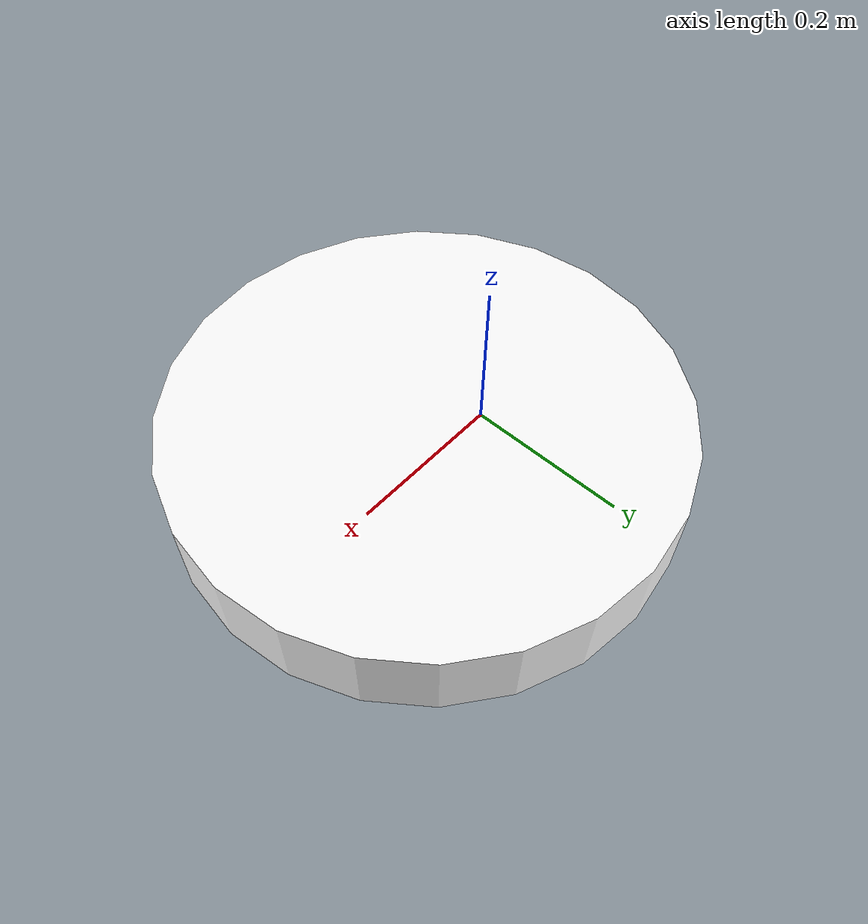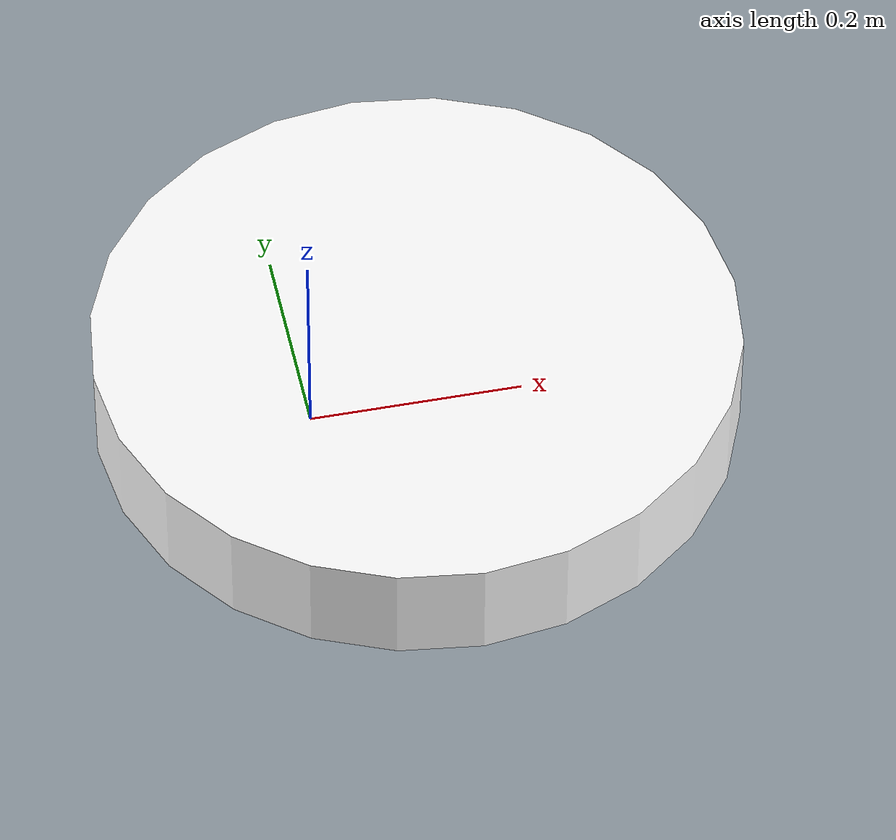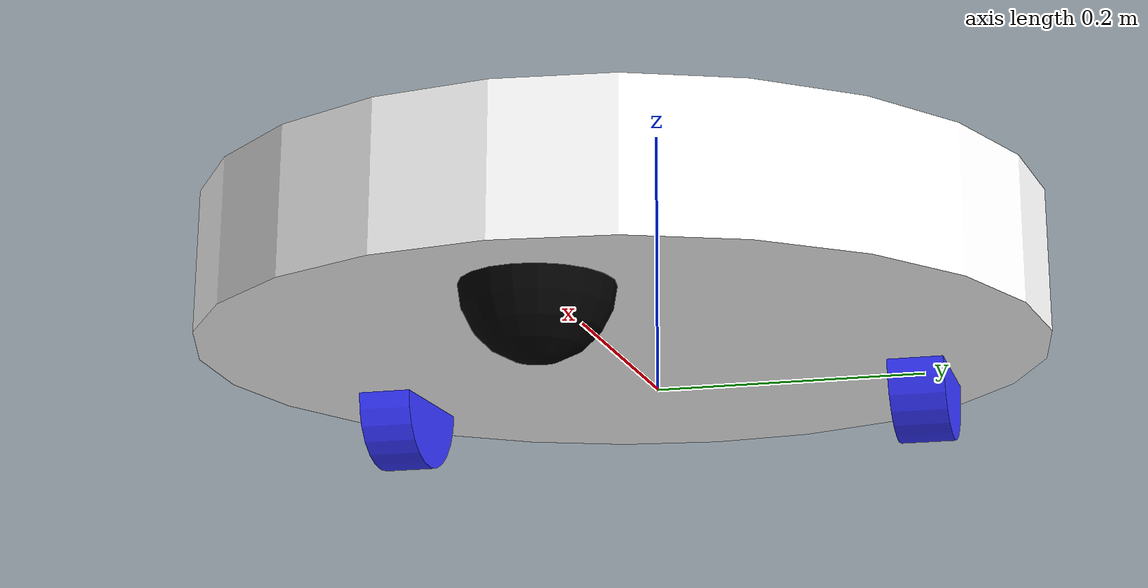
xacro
<?xml version="1.0"?>
<robot xmlns:xacro="http://www.ros.org/wiki/xacro" >

    <xacro:include filename="inertial_macros.xacro"/>

    <material name="white">
        <color rgba="1 1 1 1" />
    </material>

    <material name="orange">
        <color rgba="1 0.3 0.1 1" />
    </material>

    <material name="blue">
        <color rgba="0.2 0.2 1 1" />
    </material>

    <material name="black">
        <color rgba="0 0 0 1" />
    </material>

    <!-- Base Link -->

    <link name="base_link">

    </link>

    <!-- Chassis Link -->

    <joint name="Chassis_joint" type="fixed">
        <parent link="base_link"/>
        <child link="chassis"/>
        <origin xyz="-0.2 0 0"/>
    </joint>

    <link name="chassis">
        <visual>
            <origin xyz="0.3 0 0.05"/>
            <geometry>
                <cylinder length="0.1" radius="0.3"/>
            </geometry>
            <material name="white"/>
        </visual>
        <collision>
            <origin xyz="0.3 0 0.05"/>
            <geometry>
                <cylinder length="0.1" radius="0.3"/>
            </geometry>
        </collision>
        <xacro:inertial_body mass="0.5" length="0.1" radius="0.3">
            <origin xyz="0.3 0 0.05" rpy="0 0 0"/>
        </xacro:inertial_body>
    </link>

    <!-- Left Wheel Link -->

    <joint name="left_wheel_joint" type="continuous">
        <parent link="base_link"/>
        <child link="left_wheel"/>
        <origin xyz="0 0.2 0" rpy="-${pi/2} 0 0"/>
        <axis xyz="0 0 1"/>
    </joint>

    <link name="left_wheel">
        <visual>
            <geometry>
                <cylinder radius="0.05" length="0.04"/>
            </geometry>
            <material name="blue"/>
        </visual>
        <collision>
            <geometry>
                <cylinder radius="0.05" length="0.04"/>
            </geometry>
        </collision>
        <xacro:inertial_cylinder mass="0.1" length="0.04" radius="0.05">
            <origin xyz="0 0 0" rpy="0 0 0"/>
        </xacro:inertial_cylinder>
    </link>

    <!-- Right Wheel Link -->

    <joint name="right_wheel_joint" type="continuous">
        <parent link="base_link"/>
        <child link="right_wheel"/>
        <origin xyz="0 -0.2 0" rpy="${pi/2} 0 0"/>
        <axis xyz="0 0 -1"/>
    </joint>

    <link name="right_wheel">
        <visual>
            <geometry>
                <cylinder radius="0.05" length="0.04"/>
            </geometry>
            <material name="blue"/>
        </visual>
        <collision>
            <geometry>
                <cylinder radius="0.05" length="0.04"/>
            </geometry>
        </collision>
        <xacro:inertial_cylinder mass="0.1" length="0.04" radius="0.05">
            <origin xyz="0 0 0" rpy="0 0 0"/>
        </xacro:inertial_cylinder>
    </link>

    <!-- Caster Wheel Link -->

    <joint name="caster_wheel_joint" type="fixed">
        <parent link="chassis"/>
        <child link="caster_wheel"/>
        <origin xyz="0.5 0 0"/>
    </joint>

    <link name="caster_wheel">
        <visual>
            <geometry>
                <sphere radius="0.05"/>
            </geometry>
            <material name="black"/>
        </visual>
        <collision>
            <geometry>
                <sphere radius="0.05"/>
            </geometry>
        </collision>
        <xacro:inertial_sphere mass="0.1" radius="0.05">
            <origin xyz="0 0 0" rpy="0 0 0"/>
        </xacro:inertial_sphere>
    </link>

</robot>

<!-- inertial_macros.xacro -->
<robot xmlns:xacro="http://www.ros.org/wiki/xacro" >

    <!-- Specify some standard inertial calculations https://en.wikipedia.org/wiki/List_of_moments_of_inertia -->
    <!-- These make use of xacro's mathematical functionality -->

    <xacro:macro name="inertial_sphere" params="mass radius *origin">
        <inertial>
            <xacro:insert_block name="origin"/>
            <mass value="${mass}" />
            <inertia ixx="${(2/5) * mass * (radius*radius)}" ixy="0.0" ixz="0.0"
                    iyy="${(2/5) * mass * (radius*radius)}" iyz="0.0"
                    izz="${(2/5) * mass * (radius*radius)}" />
        </inertial>
    </xacro:macro>

    <xacro:macro name="inertial_body" params="mass length radius *origin">
        <inertial>
            <xacro:insert_block name="origin"/>
            <mass value="${mass}" />
            <inertia ixx="${(1/12) * mass * (3*radius*radius + length*length)}" ixy="0.0" ixz="0.0"
                    iyy="${(1/12) * mass * (3*radius*radius + length*length)}" iyz="0.0"
                    izz="${(1/2) * mass * (radius*radius)}" />
        </inertial>
    </xacro:macro>

    <xacro:macro name="inertial_cylinder" params="mass length radius *origin">
        <inertial>
            <xacro:insert_block name="origin"/>
            <mass value="${mass}" />
            <inertia ixx="${(1/12) * mass * (3*radius*radius + length*length)}" ixy="0.0" ixz="0.0"
                    iyy="${(1/12) * mass * (3*radius*radius + length*length)}" iyz="0.0"
                    izz="${(1/2) * mass * (radius*radius)}" />
        </inertial>
    </xacro:macro>

</robot>
